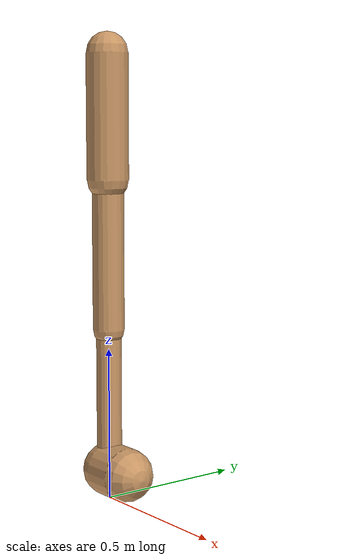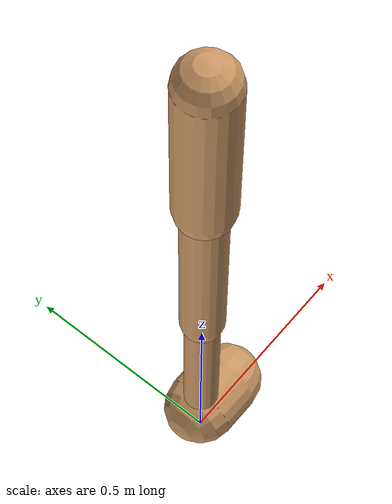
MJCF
<mujoco model="walker2d">
  <compiler angle="degree" coordinate="global" inertiafromgeom="true" />
  <default>
    <joint armature="0.01" damping=".1" limited="true" />
    <geom conaffinity="0" condim="3" contype="1" density="1000" friction="0.8 .1 .1" rgba="0.8 0.6 .4 1" />
  </default>
  <option integrator="RK4" timestep="0.002" />
  <worldbody>

    <body name="torso" pos="0 0 0.07290259756841622">
      <joint armature="0" axis="1 0 0" damping="0" limited="false" name="ignorex" pos="0 0 0" stiffness="0" type="slide" />
      <joint armature="0" axis="0 0 1" damping="0" limited="false" name="ignorez" pos="0 0 0" ref="1.25" stiffness="0" type="slide" />
      <joint armature="0" axis="0 1 0" damping="0" limited="false" name="ignorey" pos="0 0 0" stiffness="0" type="hinge" />
      <geom fromto="0 0 1.45 0 0 1.05" name="torso_geom" size="0.06723345725948739" type="capsule" />
      <body name="thigh">
        <joint axis="0 -1 0" name="thigh_joint" pos="0 0 1.05" range="-150 0" type="hinge" />
        <geom fromto="0.0 0.0 1.05 0.0 0.0 0.565467190625487" name="thigh_geom" size="0.05095770922330139" type="capsule" />
        <body name="leg" pos="0.0 0.0 -0.034532809374512974">
          <joint axis="0 -1 0" name="leg_joint" pos="0 0 0.6" range="-150 0" type="hinge" />
          <geom fromto="0.0 0.0 0.6 0.0 0.0 0.061630211806096735" name="leg_geom" size="0.04076616737864111" type="capsule" />
          <body name="foot" pos="0.0 0.0 -0.03836978819390327">
            <joint axis="0 -1 0" name="foot_joint" pos="0 0 0.1" range="-45 45" type="hinge" />
            <geom fromto="0.0 0.0 0.1 0.0944679378811923 0.0 0.1" name="foot_geom" size="0.08741801431736426" type="capsule" />
          </body>
        </body>
      </body>

      <body name="thigh_left">
        <joint axis="0 -1 0" name="thigh_left_joint" pos="0 0 1.05" range="-150 0" type="hinge" />
        <geom fromto="0.0 0.0 1.05 0.0 0.0 0.565467190625487" name="thigh_left_geom" rgba=".7 .3 .6 1" size="0.05095770922330139" type="capsule" />
        <body name="leg_left" pos="0.0 0.0 -0.034532809374512974">
          <joint axis="0 -1 0" name="leg_left_joint" pos="0 0 0.6" range="-150 0" type="hinge" />
          <geom fromto="0.0 0.0 0.6 0.0 0.0 0.061630211806096735" name="leg_left_geom" rgba=".7 .3 .6 1" size="0.04076616737864111" type="capsule" />
          <body name="foot_left" pos="0.0 0.0 -0.03836978819390327">
            <joint axis="0 -1 0" name="foot_left_joint" pos="0 0 0.1" range="-45 45" type="hinge" />
            <geom fromto="0.0 0.0 0.1 0.0944679378811923 0.0 0.1" name="foot_left_geom" rgba=".7 .3 .6 1" size="0.08741801431736426" type="capsule" />
          </body>
        </body>
      </body>
    </body>
  </worldbody>
  <actuator>

    <motor ctrllimited="true" ctrlrange="-1.0 1.0" gear="100" joint="thigh_joint" />
    <motor ctrllimited="true" ctrlrange="-1.0 1.0" gear="100" joint="leg_joint" />
    <motor ctrllimited="true" ctrlrange="-1.0 1.0" gear="100" joint="foot_joint" />
    <motor ctrllimited="true" ctrlrange="-1.0 1.0" gear="100" joint="thigh_left_joint" />
    <motor ctrllimited="true" ctrlrange="-1.0 1.0" gear="100" joint="leg_left_joint" />
    <motor ctrllimited="true" ctrlrange="-1.0 1.0" gear="100" joint="foot_left_joint" />

  </actuator>
</mujoco>
